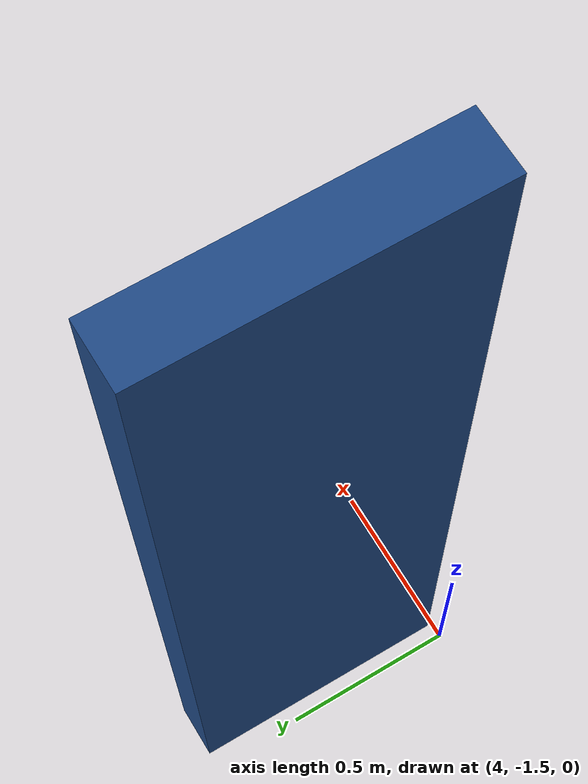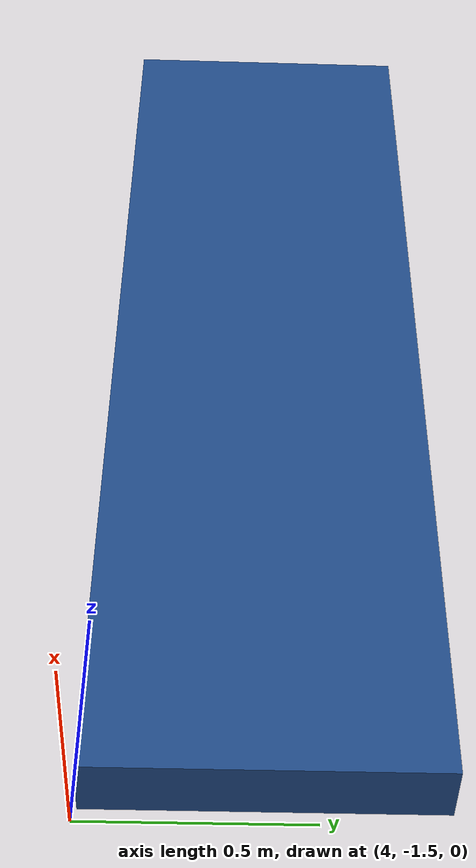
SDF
<?xml version='1.0'?>
<sdf version='1.7'>
  <model name='prueba_deteccion_de_color'>
    <pose>2.0975 -0.7425 0 0 -0 0</pose>
    <link name='Wall_0'>
      <collision name='Wall_0_Collision'>
        <geometry>
          <box>
            <size>0.75 0.15 2.5</size>
          </box>
        </geometry>
        <pose>0 0 1.25 0 -0 0</pose>
      </collision>
      <visual name='Wall_0_Visual'>
        <pose>0 0 1.25 0 -0 0</pose>
        <geometry>
          <box>
            <size>0.75 0.15 2.5</size>
          </box>
        </geometry>
        <material>
          <script>
            <uri>file://media/materials/scripts/gazebo.material</uri>
            <name>Gazebo/Grey</name>
          </script>
          <ambient>0.12549 0.290196 0.529412 1</ambient>
        </material>
        <meta>
          <layer>0</layer>
        </meta>
      </visual>
      <pose>2.0225 -0.3675 0 0 -0 -1.5708</pose>
    </link>
    <static>1</static>
  </model>
</sdf>
